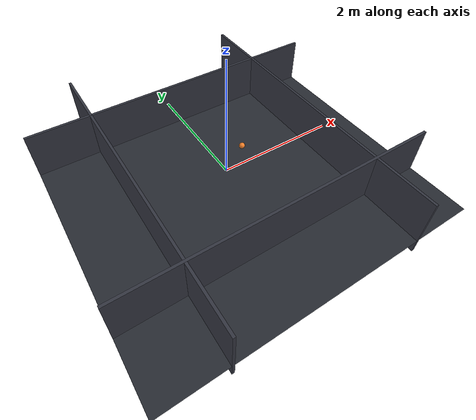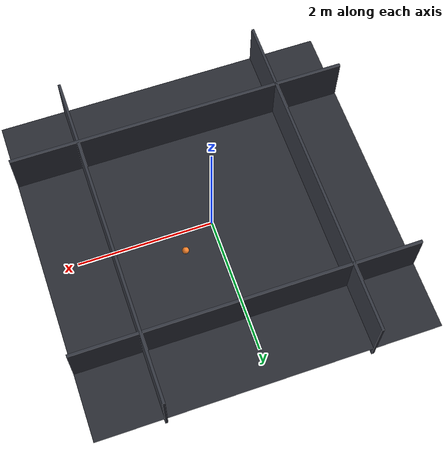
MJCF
<mujoco model="robotis_op3">
  <compiler angle="radian" meshdir="assets" autolimits="true" />
  <option timestep="0.005" />
  <asset>
    <material name="black" rgba="0.2 0.2 0.2 1" />
    <mesh name="bodyc" file="op3c_body.stl" />
    <mesh name="body1c" file="op3c_body_sub1.stl" />
    <mesh name="body2c" file="op3c_body_sub2.stl" />
    <mesh name="body3c" file="op3c_body_sub3.stl" />
    <mesh name="body4c" file="op3c_body_sub4.stl" />
    <mesh name="ll1c" file="op3c_ll1.stl" />
    <mesh name="ll2c" file="op3c_ll2.stl" />
    <mesh name="ll3c" file="op3c_ll3.stl" />
    <mesh name="ll4c" file="op3c_ll4.stl" />
    <mesh name="ll5c" file="op3c_ll5.stl" />
    <mesh name="ll6c" file="op3c_ll6.stl" />
    <mesh name="rl1c" file="op3c_rl1.stl" />
    <mesh name="rl2c" file="op3c_rl2.stl" />
    <mesh name="rl3c" file="op3c_rl3.stl" />
    <mesh name="rl4c" file="op3c_rl4.stl" />
    <mesh name="rl5c" file="op3c_rl5.stl" />
    <mesh name="rl6c" file="op3c_rl6.stl" />
    <mesh name="la1c" file="op3c_la1.stl" />
    <mesh name="la2c" file="op3c_la2.stl" />
    <mesh name="la3c" file="op3c_la3.stl" />
    <mesh name="ra1c" file="op3c_ra1.stl" />
    <mesh name="ra2c" file="op3c_ra2.stl" />
    <mesh name="ra3c" file="op3c_ra3.stl" />
    <mesh name="h1c" file="op3c_h1.stl" />
    <mesh name="h2c" file="op3c_h2.stl" />
    <mesh name="h21c" file="op3c_h2_sub1.stl" />
    <mesh name="h22c" file="op3c_h2_sub2.stl" />
  </asset>
  <default>
    <mesh scale="0.001 0.001 0.001" />
    <geom type="mesh" solref=".004 1" />
    <joint damping="1.084" armature="0.045" frictionloss="0.03" />
    <site group="5" type="sphere" />
    <position kp="21.1" ctrlrange="-3.141592 3.141592" forcerange="-5 5" />
    <default class="collision">
      <geom group="3" />
      <default class="foot">
        <geom mass="0" type="box" />
      </default>
    </default>
    <default class="visual">
      <geom material="black" contype="0" conaffinity="0" group="2" />
    </default>
  </default>
  <worldbody>
    <geom name="floor" type="plane" size="2.5 2.5 0.05" pos="0 0 0.0" rgba="0.16 0.17 0.20 1" condim="3" />
    <geom name="wallW" type="box" pos="-1.5 0 0.25" size="0.02 2.5 0.5" rgba="0.20 0.21 0.25 1" contype="1" conaffinity="1" />
    <geom name="wallE" type="box" pos="1.5 0 0.25" size="0.02 2.5 0.5" rgba="0.20 0.21 0.25 1" contype="1" conaffinity="1" />
    <geom name="wallS" type="box" pos="0 -1.5 0.25" size="2.5 0.02 0.5" rgba="0.20 0.21 0.25 1" contype="1" conaffinity="1" />
    <geom name="wallN" type="box" pos="0 1.5 0.25" size="2.5 0.02 0.5" rgba="0.20 0.21 0.25 1" contype="1" conaffinity="1" />
    <light mode="targetbodycom" target="body_link" pos="4 0 1" />
    <body name="body_link" pos="0 0 0.3">
      <inertial pos="-0.01501 0.00013 0.06582" quat="0.704708 0.704003 0.0667707 -0.0575246" mass="1.34928" diaginertia="0.00341264 0.00316574 0.00296931" />
      <freejoint />
      <geom mesh="bodyc" class="collision" />
      <geom mesh="body1c" class="collision" />
      <geom mesh="body2c" class="collision" />
      <geom mesh="body3c" class="collision" />
      <geom mesh="body4c" class="collision" />
      <site name="torso" />
      <body name="head_pan_link" pos="-0.001 0 0.1365">
        <inertial pos="0.00233 0 0.00823" quat="0.663575 0.663575 0.244272 -0.244272" mass="0.01176" diaginertia="4.23401e-06 3.60599e-06 1.65e-06" />
        <joint name="head_pan" axis="0 0 1" />
        <geom mesh="h1c" class="collision" />
        <body name="head_tilt_link" pos="0.01 0.019 0.0285">
          <inertial pos="0.0023 -0.01863 0.0277" quat="0.997312 0.00973825 0.0726131 -0.00102702" mass="0.13631" diaginertia="0.000107452 8.72266e-05 4.39413e-05" />
          <joint name="head_tilt" axis="0 -1 0" />
          <geom mesh="h2c" class="collision" />
          <geom mesh="h21c" class="collision" />
          <geom mesh="h22c" class="collision" />
          <camera name="egocentric" pos="0.01425 -0.019 0.04975" fovy="43.3" mode="fixed" euler="0.0 -1.570796 -1.570796" />
        </body>
      </body>
      <body name="l_sho_pitch_link" pos="-0.001 0.06 0.111">
        <inertial pos="0 0.00823 -0.00233" quat="0.244272 0.663575 0.244272 0.663575" mass="0.01176" diaginertia="4.23401e-06 3.60599e-06 1.65e-06" />
        <joint name="l_sho_pitch" axis="0 1 0" />
        <geom mesh="la1c" class="collision" />
        <body name="l_sho_roll_link" pos="0.019 0.0285 -0.01">
          <inertial pos="-0.01844 0.04514 0.00028" quat="0.501853 0.50038 -0.498173 0.499588" mass="0.17758" diaginertia="0.000234742 0.00022804 3.04183e-05" />
          <joint name="l_sho_roll" axis="-1 0 0" />
          <geom mesh="la2c" class="collision" />
          <body name="l_el_link" pos="0 0.0904 -0.0001">
            <inertial pos="-0.019 0.07033 0.0038" quat="0.483289 0.51617 -0.51617 0.483289" mass="0.04127" diaginertia="6.8785e-05 6.196e-05 1.2065e-05" />
            <joint name="l_el" axis="1 0 0" />
            <geom mesh="la3c" class="collision" />
          </body>
        </body>
      </body>
      <body name="r_sho_pitch_link" pos="-0.001 -0.06 0.111">
        <inertial pos="0 -0.00823 -0.00233" quat="-0.244272 0.663575 -0.244272 0.663575" mass="0.01176" diaginertia="4.23401e-06 3.60599e-06 1.65e-06" />
        <joint name="r_sho_pitch" axis="0 -1 0" />
        <geom mesh="ra1c" class="collision" />
        <body name="r_sho_roll_link" pos="0.019 -0.0285 -0.01">
          <inertial pos="-0.01844 -0.04514 0.00028" quat="0.50038 0.501853 -0.499588 0.498173" mass="0.17758" diaginertia="0.000234742 0.00022804 3.04183e-05" />
          <joint name="r_sho_roll" axis="-1 0 0" />
          <geom mesh="ra2c" class="collision" />
          <body name="r_el_link" pos="0 -0.0904 -0.0001">
            <inertial pos="-0.019 -0.07033 0.0038" quat="0.51617 0.483289 -0.483289 0.51617" mass="0.04127" diaginertia="6.8785e-05 6.196e-05 1.2065e-05" />
            <joint name="r_el" axis="1 0 0" />
            <geom mesh="ra3c" class="collision" />
          </body>
        </body>
      </body>
      <body name="l_hip_yaw_link" pos="0 0.035 0">
        <inertial pos="-0.00157 0 -0.00774" quat="0.499041 0.500957 0.500957 0.499041" mass="0.01181" diaginertia="4.3e-06 4.12004e-06 1.50996e-06" />
        <joint name="l_hip_yaw" axis="0 0 -1" />
        <geom mesh="ll1c" class="collision" />
        <body name="l_hip_roll_link" pos="-0.024 0 -0.0285">
          <inertial pos="0.00388 0.00028 -0.01214" quat="0.502657 0.490852 0.498494 0.507842" mass="0.17886" diaginertia="0.000125243 0.000108598 4.65693e-05" />
          <joint name="l_hip_roll" axis="-1 0 0" />
          <geom mesh="ll2c" class="collision" />
          <body name="l_hip_pitch_link" pos="0.0241 0.019 0">
            <inertial pos="0.00059 -0.01901 -0.08408" quat="0.999682 0.0246915 0.00447825 -0.002482" mass="0.11543" diaginertia="0.000104996 9.63044e-05 2.47492e-05" />
            <joint name="l_hip_pitch" axis="0 1 0" />
            <geom mesh="ll3c" class="collision" />
            <body name="l_knee_link" pos="0 0 -0.11015">
              <inertial pos="0 -0.02151 -0.055" mass="0.04015" diaginertia="3.715e-05 2.751e-05 1.511e-05" />
              <joint name="l_knee" axis="0 1 0" />
              <geom mesh="ll4c" class="collision" />
              <body name="l_ank_pitch_link" pos="0 0 -0.11">
                <inertial pos="-0.02022 -0.01872 0.01214" quat="0.490852 0.502657 0.507842 0.498494" mass="0.17886" diaginertia="0.000125243 0.000108598 4.65693e-05" />
                <joint name="l_ank_pitch" axis="0 -1 0" />
                <geom mesh="ll5c" class="collision" />
                <body name="l_ank_roll_link" pos="-0.0241 -0.019 0">
                  <inertial pos="0.02373 0.01037 -0.0276" quat="0.0078515 0.707601 0.0113965 0.706477" mass="0.06934" diaginertia="0.000115818 7.87135e-05 4.03389e-05" />
                  <joint name="l_ank_roll" axis="1 0 0" />
                  <geom class="foot" pos="0.024 0.013 -0.0265" size="0.0635 0.028 0.004" />
                  <geom class="foot" pos="0.024 0.0125 -0.0265" size="0.057 0.039 0.004" />
                </body>
              </body>
            </body>
          </body>
        </body>
      </body>
      <body name="r_hip_yaw_link" pos="0 -0.035 0">
        <inertial pos="-0.00157 0 -0.00774" quat="0.499041 0.500957 0.500957 0.499041" mass="0.01181" diaginertia="4.3e-06 4.12004e-06 1.50996e-06" />
        <joint name="r_hip_yaw" axis="0 0 -1" />
        <geom mesh="rl1c" class="collision" />
        <body name="r_hip_roll_link" pos="-0.024 0 -0.0285">
          <inertial pos="0.00388 -0.00028 -0.01214" quat="0.507842 0.498494 0.490852 0.502657" mass="0.17886" diaginertia="0.000125243 0.000108598 4.65693e-05" />
          <joint name="r_hip_roll" axis="-1 0 0" />
          <geom mesh="rl2c" class="collision" />
          <body name="r_hip_pitch_link" pos="0.0241 -0.019 0">
            <inertial pos="0.00059 0.01901 -0.08408" quat="0.999682 -0.0246915 0.00447825 0.002482" mass="0.11543" diaginertia="0.000104996 9.63044e-05 2.47492e-05" />
            <joint name="r_hip_pitch" axis="0 -1 0" />
            <geom mesh="rl3c" class="collision" />
            <body name="r_knee_link" pos="0 0 -0.11015">
              <inertial pos="0 0.02151 -0.055" mass="0.04015" diaginertia="3.715e-05 2.751e-05 1.511e-05" />
              <joint name="r_knee" axis="0 -1 0" />
              <geom mesh="rl4c" class="collision" />
              <body name="r_ank_pitch_link" pos="0 0 -0.11">
                <inertial pos="-0.02022 0.01872 0.01214" quat="0.498494 0.507842 0.502657 0.490852" mass="0.17886" diaginertia="0.000125243 0.000108598 4.65693e-05" />
                <joint name="r_ank_pitch" axis="0 1 0" />
                <geom mesh="rl5c" class="collision" />
                <body name="r_ank_roll_link" pos="-0.0241 0.019 0">
                  <inertial pos="0.02373 -0.01037 -0.0276" quat="-0.0078515 0.707601 -0.0113965 0.706477" mass="0.06934" diaginertia="0.000115818 7.87135e-05 4.03389e-05" />
                  <joint name="r_ank_roll" axis="1 0 0" />
                  <geom class="foot" pos="0.024 -0.013 -0.0265" size="0.0635 0.028 0.004" />
                  <geom class="foot" pos="0.024 -0.0125 -0.0265" size="0.057 0.039 0.004" />
                </body>
              </body>
            </body>
          </body>
        </body>
      </body>
    </body>
    <body name="ball" pos="0.5 0.3 0.05">
      <freejoint name="ball_freejoint" />
      <geom name="ball_geom" type="sphere" size="0.05" rgba="0.95 0.5 0.16 1" condim="6" friction="1 0.005 0.0001" mass="0.08" />
    </body>
  </worldbody>
  <contact>
    <exclude body1="l_hip_yaw_link" body2="l_hip_pitch_link" />
    <exclude body1="r_hip_yaw_link" body2="r_hip_pitch_link" />
  </contact>
  <actuator>
    <position name="head_pan_act" joint="head_pan" />
    <position name="head_tilt_act" joint="head_tilt" />
    <position name="l_sho_pitch_act" joint="l_sho_pitch" />
    <position name="l_sho_roll_act" joint="l_sho_roll" />
    <position name="l_el_act" joint="l_el" />
    <position name="r_sho_pitch_act" joint="r_sho_pitch" />
    <position name="r_sho_roll_act" joint="r_sho_roll" />
    <position name="r_el_act" joint="r_el" />
    <position name="l_hip_yaw_act" joint="l_hip_yaw" />
    <position name="l_hip_roll_act" joint="l_hip_roll" />
    <position name="l_hip_pitch_act" joint="l_hip_pitch" />
    <position name="l_knee_act" joint="l_knee" />
    <position name="l_ank_pitch_act" joint="l_ank_pitch" />
    <position name="l_ank_roll_act" joint="l_ank_roll" />
    <position name="r_hip_yaw_act" joint="r_hip_yaw" />
    <position name="r_hip_roll_act" joint="r_hip_roll" />
    <position name="r_hip_pitch_act" joint="r_hip_pitch" />
    <position name="r_knee_act" joint="r_knee" />
    <position name="r_ank_pitch_act" joint="r_ank_pitch" />
    <position name="r_ank_roll_act" joint="r_ank_roll" />
  </actuator>
  <keyframe>
    <key name="home" qpos="0 0 0.245 1 0 0 0 0 0 0 0 0 0 0 0 0 0 -0.5 0.9 0.52 0 0 0 -0.5 0.9 0.52 0" ctrl="0 0 0 0 0 0 0 0 0 0 -0.5 0.9 0.52 0 0 0 -0.5 0.9 0.52 0" />
  </keyframe>
</mujoco>
